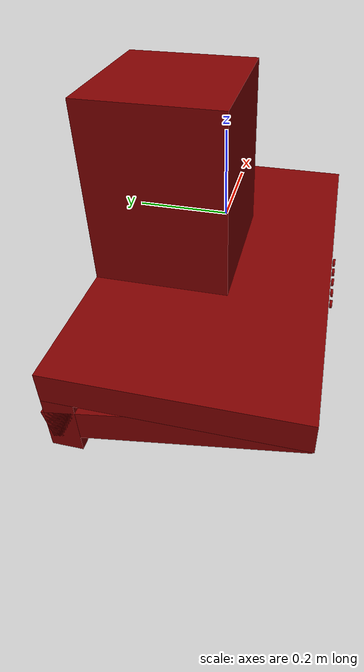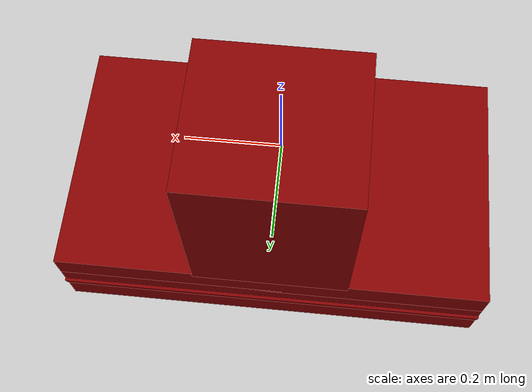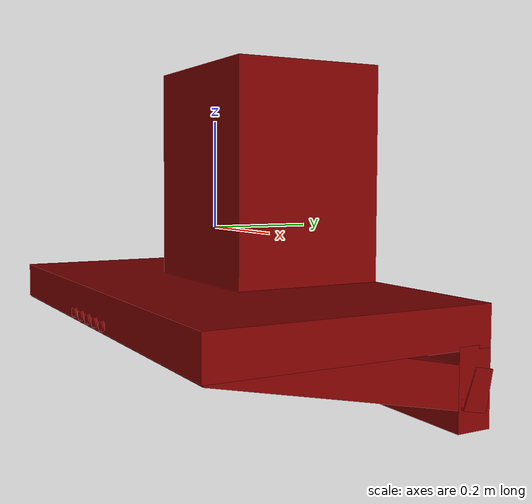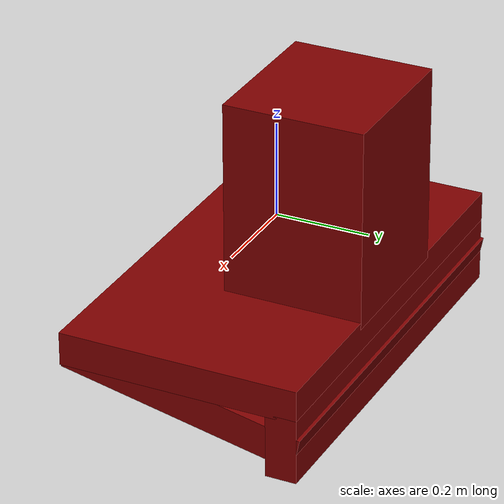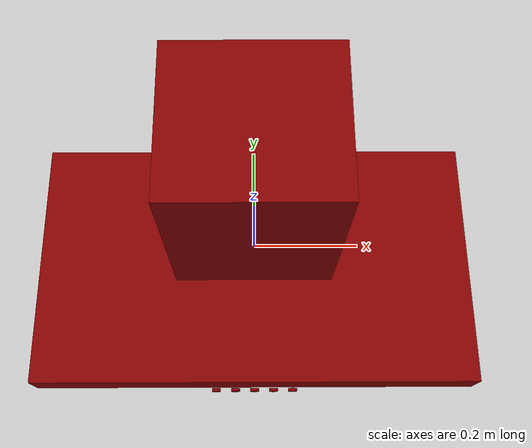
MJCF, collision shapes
<?xml version='1.0' encoding='UTF-8'?>
<mujoco model="model">
  <compiler angle="radian"/>
  <asset>
    <mesh file="visuals/Body001.obj" name="Body001_vis"/>
    <mesh file="visuals/Button001.obj" name="Button001_vis"/>
    <mesh file="visuals/Button002.obj" name="Button002_vis"/>
    <mesh file="visuals/Button003.obj" name="Button003_vis"/>
    <mesh file="visuals/Button004.obj" name="Button004_vis"/>
    <mesh file="visuals/Button005.obj" name="Button005_vis"/>
    <texture file="visuals/T_BC001.png" name="Body001_material" type="2d"/>
    <material name="Body001_material" rgba="1 1 1 1.0" texture="Body001_material" shininess="0.141421377658844" specular="2"/>
    <texture file="visuals/T_BC001.png" name="Button001_material" type="2d"/>
    <material name="Button001_material" rgba="1 1 1 1.0" texture="Button001_material" shininess="0.141421377658844" specular="0.3103448502657381"/>
    <texture file="visuals/T_BC001.png" name="Button002_material" type="2d"/>
    <material name="Button002_material" rgba="1 1 1 1.0" texture="Button002_material" shininess="0.141421377658844" specular="0.3103448502657381"/>
    <texture file="visuals/T_BC001.png" name="Button003_material" type="2d"/>
    <material name="Button003_material" rgba="1 1 1 1.0" texture="Button003_material" shininess="0.141421377658844" specular="0.3103448502657381"/>
    <texture file="visuals/T_BC001.png" name="Button004_material" type="2d"/>
    <material name="Button004_material" rgba="1 1 1 1.0" texture="Button004_material" shininess="0.141421377658844" specular="0.3103448502657381"/>
    <texture file="visuals/T_BC001.png" name="Button005_material" type="2d"/>
    <material name="Button005_material" rgba="1 1 1 1.0" texture="Button005_material" shininess="0.141421377658844" specular="0.3103448502657381"/>
  </asset>
  <default>
    <default class="visual">
      <geom conaffinity="0" contype="0" group="1" type="mesh"/>
    </default>
    <default class="collision">
      <geom group="0" rgba="0.5 0 0 0.5"/>
    </default>
    <default class="spawn">
      <geom group="0" rgba="1 1 1 0.5" contype="0" conaffinity="0"/>
      <site group="0" rgba="1 1 1 0.5"/>
    </default>
    <default class="region">
      <geom group="1" conaffinity="0" contype="0" rgba="0 1 0 0"/>
    </default>
  </default>
  <worldbody>
    <body>
      <body name="object">
        <geom mesh="Body001_vis" type="mesh" solimp="0.998 0.998 0.001" solref="0.001 1" density="100" friction="0.95 0.3 0.1" class="visual" material="Body001_material"/>
        <geom class="collision" type="box" pos="-0.000730 0.110712 0.093234" size="0.16113141179084778 0.14826783537864685 0.21083462238311768" quat="1.0 0.0 0.0 0.0"/>
        <geom class="collision" type="box" pos="-0.000000 0.005102 -0.137751" size="0.44824540615081787 0.25387755036354065 0.03525924310088158" quat="1.0 0.0 0.0 0.0"/>
        <geom class="collision" type="box" pos="-0.000000 0.009745 -0.192296" size="0.44824540615081787 0.25387755036354065 0.03525924310088158" quat="0.9948753118515015 -0.10110931843519211 -0.0 0.0"/>
        <geom class="collision" type="box" pos="-0.000000 0.226209 -0.235411" size="0.44824540615081787 0.032770540565252304 0.06865781545639038" quat="1.0 0.0 0.0 0.0"/>
        <body name="Button001">
          <joint axis="0.0 1.0 0.0" pos="-0.078625 -0.256292 -0.157134" limited="true" name="Button001_joint" range="0.0 0.004" type="slide" damping="1" frictionloss="1" armature=".01" stiffness="0.05"/>
          <geom mesh="Button001_vis" type="mesh" solimp="0.998 0.998 0.001" solref="0.001 1" density="100" friction="0.95 0.3 0.1" class="visual" material="Button001_material"/>
          <geom class="collision" type="cylinder" pos="-0.078625 -0.256393 -0.157134" size="0.009126921184360981 0.0027908969204872847" quat="0.7071068286895752 0.7071067690849304 0.0 0.0"/>
        </body>
        <body name="Button002">
          <joint axis="0.0 1.0 0.0" pos="-0.039735 -0.256292 -0.157134" limited="true" name="Button002_joint" range="0.0 0.004" type="slide" damping="1" frictionloss="1" armature=".01" stiffness="0.05"/>
          <geom mesh="Button002_vis" type="mesh" solimp="0.998 0.998 0.001" solref="0.001 1" density="100" friction="0.95 0.3 0.1" class="visual" material="Button002_material"/>
          <geom class="collision" type="cylinder" pos="-0.039676 -0.256393 -0.157134" size="0.009126921184360981 0.0027908969204872847" quat="0.7071068286895752 0.7071067690849304 0.0 0.0"/>
        </body>
        <body name="Button003">
          <joint axis="0.0 1.0 0.0" pos="-0.000846 -0.256292 -0.157134" limited="true" name="Button003_joint" range="0.0 0.004" type="slide" damping="1" frictionloss="1" armature=".01" stiffness="0.05"/>
          <geom mesh="Button003_vis" type="mesh" solimp="0.998 0.998 0.001" solref="0.001 1" density="100" friction="0.95 0.3 0.1" class="visual" material="Button003_material"/>
          <geom class="collision" type="cylinder" pos="-0.000637 -0.256393 -0.157134" size="0.009126921184360981 0.0027908969204872847" quat="0.7071068286895752 0.7071067690849304 0.0 0.0"/>
        </body>
        <body name="Button004">
          <joint axis="0.0 1.0 0.0" pos="0.038044 -0.256292 -0.157134" limited="true" name="Button004_joint" range="0.0 0.004" type="slide" damping="1" frictionloss="1" armature=".01" stiffness="0.05"/>
          <geom mesh="Button004_vis" type="mesh" solimp="0.998 0.998 0.001" solref="0.001 1" density="100" friction="0.95 0.3 0.1" class="visual" material="Button004_material"/>
          <geom class="collision" type="cylinder" pos="0.038161 -0.256393 -0.157134" size="0.009126921184360981 0.0027908969204872847" quat="0.7071068286895752 0.7071067690849304 0.0 0.0"/>
        </body>
        <body name="Button005">
          <joint axis="0.0 1.0 0.0" pos="0.076933 -0.256292 -0.157134" limited="true" name="Button005_joint" range="0.0 0.004" type="slide" damping="1" frictionloss="1" armature=".01" stiffness="0.05"/>
          <geom mesh="Button005_vis" type="mesh" solimp="0.998 0.998 0.001" solref="0.001 1" density="100" friction="0.95 0.3 0.1" class="visual" material="Button005_material"/>
          <geom class="collision" type="cylinder" pos="0.077121 -0.256393 -0.157134" size="0.009126921184360981 0.0027908969204872847" quat="0.7071068286895752 0.7071067690849304 0.0 0.0"/>
        </body>
        <geom class="region" name="reg_main" type="box" pos="-0.000730499999999995 -0.00044800000000000395 -7.5000000000213785e-06" size="0.44750049999999997 0.258532 0.3037385"/>
      </body>
    </body>
  </worldbody>
  <actuator>
    <motor name="Button001_joint_actuator" joint="Button001_joint" gear="0.5"/>
    <motor name="Button002_joint_actuator" joint="Button002_joint" gear="0.5"/>
    <motor name="Button003_joint_actuator" joint="Button003_joint" gear="0.5"/>
    <motor name="Button004_joint_actuator" joint="Button004_joint" gear="0.5"/>
    <motor name="Button005_joint_actuator" joint="Button005_joint" gear="0.5"/>
  </actuator>
</mujoco>
